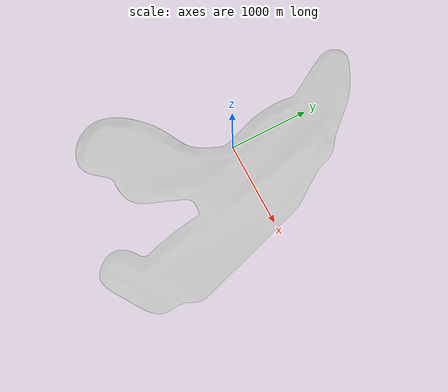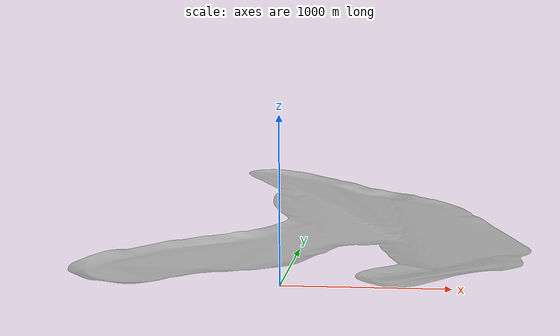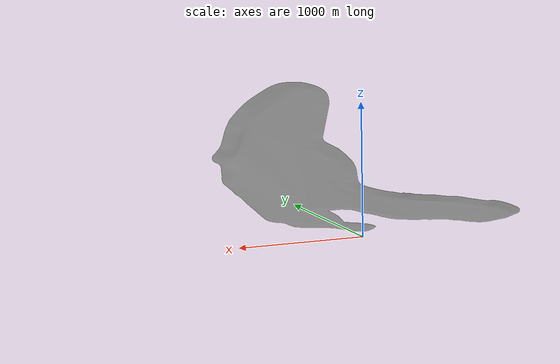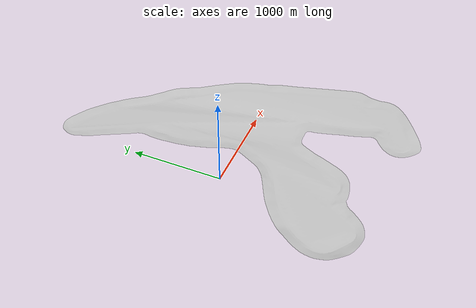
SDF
<?xml version="1.0"?>
<sdf version="1.7">

    <model name="spa_circuit">
      <static>true</static>
      <link name="link">
        <visual name="visual">
          <geometry>
            <mesh>
              <uri>model://spa/meshes/spa.dae</uri>
            </mesh>
          </geometry>
        </visual>
        <collision name="collision">
          <geometry>
            <mesh>
              <uri>model://spa/meshes/spa.dae</uri>
            </mesh>
          </geometry>
        </collision>
      </link>
    </model>
</sdf>
